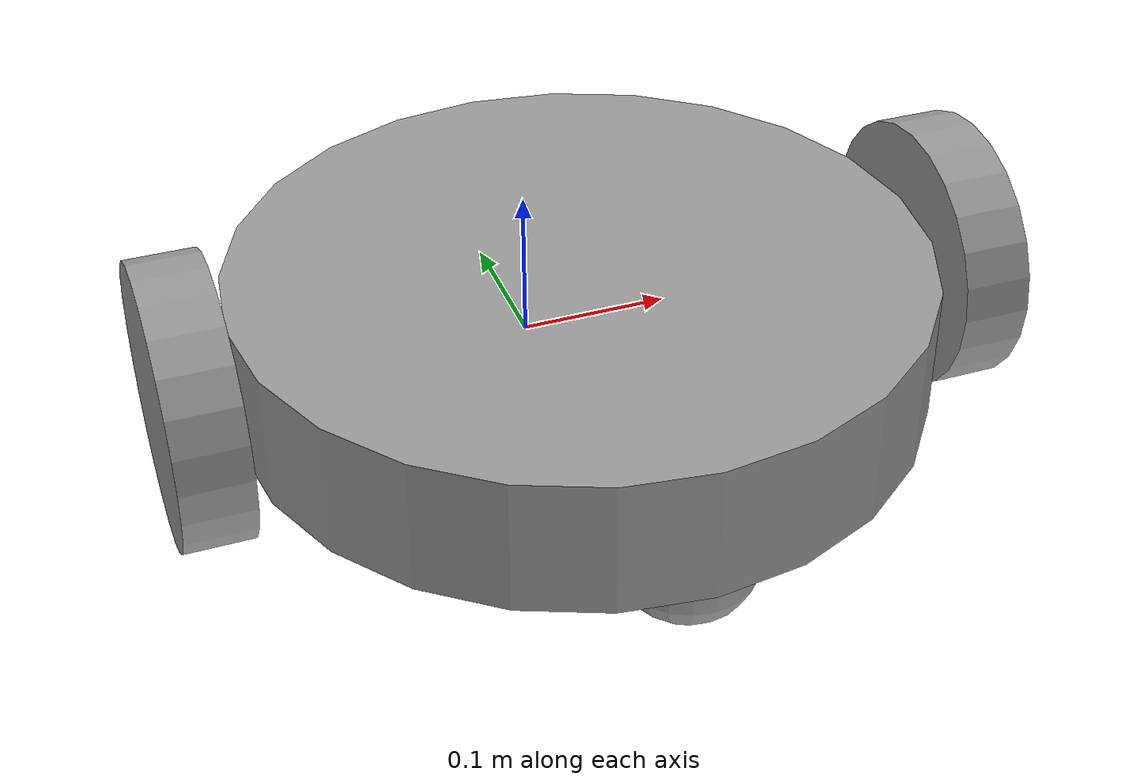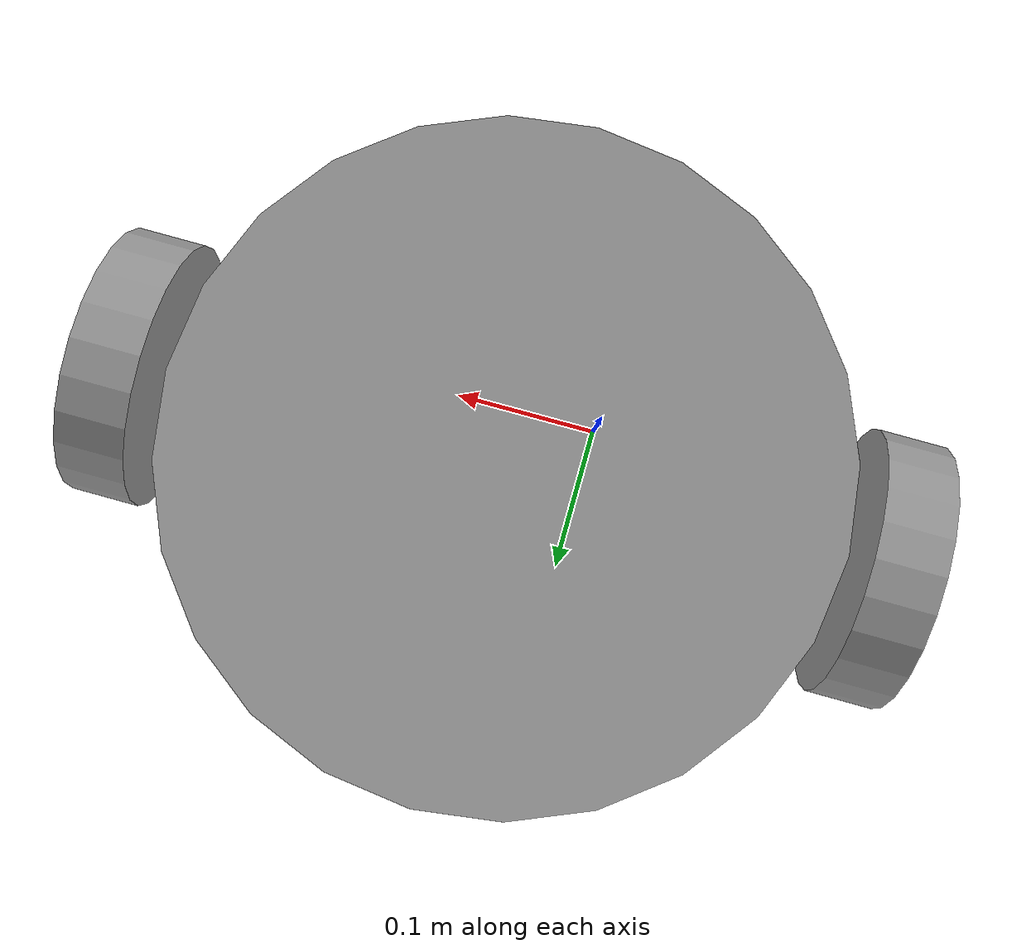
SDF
<?xml version='1.0'?>
<sdf version='1.6'>
  <model name='udacity_bot'>
    <link name='link_0'>
      <inertial>
        <mass>1</mass>
        <inertia>
          <ixx>0.145833</ixx>
          <ixy>0</ixy>
          <ixz>0</ixz>
          <iyy>0.145833</iyy>
          <iyz>0</iyz>
          <izz>0.125</izz>
        </inertia>
        <pose frame=''>0 0 0 0 -0 0</pose>
      </inertial>
      <pose frame=''>0.053998 0.039 -0.030999 0 -0 0</pose>
      <gravity>1</gravity>
      <self_collide>0</self_collide>
      <kinematic>0</kinematic>
      <enable_wind>0</enable_wind>
      <visual name='visual'>
        <pose frame=''>0 0 0 0 -0 0</pose>
        <geometry>
          <cylinder>
            <radius>0.25</radius>
            <length>0.1</length>
          </cylinder>
        </geometry>
        <material>
          <lighting>1</lighting>
          <script>
            <uri>file://media/materials/scripts/gazebo.material</uri>
            <name>Gazebo/Grey</name>
          </script>
          <shader type='vertex'>
            <normal_map>__default__</normal_map>
          </shader>
          <ambient>0.3 0.3 0.3 1</ambient>
          <diffuse>0.7 0.7 0.7 1</diffuse>
          <specular>0.01 0.01 0.01 1</specular>
          <emissive>0 0 0 1</emissive>
        </material>
        <transparency>0</transparency>
        <cast_shadows>1</cast_shadows>
      </visual>
      <collision name='collision'>
        <laser_retro>0</laser_retro>
        <max_contacts>10</max_contacts>
        <pose frame=''>0 0 0 0 -0 0</pose>
        <geometry>
          <cylinder>
            <radius>0.25</radius>
            <length>0.1</length>
          </cylinder>
        </geometry>
        <surface>
          <friction>
            <ode>
              <mu>1</mu>
              <mu2>1</mu2>
              <fdir1>0 0 0</fdir1>
              <slip1>0</slip1>
              <slip2>0</slip2>
            </ode>
            <torsional>
              <coefficient>1</coefficient>
              <patch_radius>0</patch_radius>
              <surface_radius>0</surface_radius>
              <use_patch_radius>1</use_patch_radius>
              <ode>
                <slip>0</slip>
              </ode>
            </torsional>
          </friction>
          <bounce>
            <restitution_coefficient>0</restitution_coefficient>
            <threshold>1e+06</threshold>
          </bounce>
          <contact>
            <collide_without_contact>0</collide_without_contact>
            <collide_without_contact_bitmask>1</collide_without_contact_bitmask>
            <collide_bitmask>1</collide_bitmask>
            <ode>
              <soft_cfm>0</soft_cfm>
              <soft_erp>0.2</soft_erp>
              <kp>1e+13</kp>
              <kd>1</kd>
              <max_vel>0.01</max_vel>
              <min_depth>0</min_depth>
            </ode>
            <bullet>
              <split_impulse>1</split_impulse>
              <split_impulse_penetration_threshold>-0.01</split_impulse_penetration_threshold>
              <soft_cfm>0</soft_cfm>
              <soft_erp>0.2</soft_erp>
              <kp>1e+13</kp>
              <kd>1</kd>
            </bullet>
          </contact>
        </surface>
      </collision>
    </link>
    <link name='link_3'>
      <inertial>
        <mass>1</mass>
        <inertia>
          <ixx>0.145833</ixx>
          <ixy>0</ixy>
          <ixz>0</ixz>
          <iyy>0.145833</iyy>
          <iyz>0</iyz>
          <izz>0.125</izz>
        </inertia>
        <pose frame=''>0 0 0 0 -0 0</pose>
      </inertial>
      <pose frame=''>-0.226002 0.039 -0.030999 0 1.5707 0</pose>
      <gravity>1</gravity>
      <self_collide>0</self_collide>
      <kinematic>0</kinematic>
      <enable_wind>0</enable_wind>
      <visual name='visual'>
        <pose frame=''>0 0 0 0 -0 0</pose>
        <geometry>
          <cylinder>
            <radius>0.1</radius>
            <length>0.05</length>
          </cylinder>
        </geometry>
        <material>
          <lighting>1</lighting>
          <script>
            <uri>file://media/materials/scripts/gazebo.material</uri>
            <name>Gazebo/Grey</name>
          </script>
          <shader type='vertex'>
            <normal_map>__default__</normal_map>
          </shader>
          <ambient>0.3 0.3 0.3 1</ambient>
          <diffuse>0.7 0.7 0.7 1</diffuse>
          <specular>0.01 0.01 0.01 1</specular>
          <emissive>0 0 0 1</emissive>
        </material>
        <transparency>0</transparency>
        <cast_shadows>1</cast_shadows>
      </visual>
      <collision name='collision'>
        <laser_retro>0</laser_retro>
        <max_contacts>10</max_contacts>
        <pose frame=''>0 0 0 0 -0 0</pose>
        <geometry>
          <cylinder>
            <radius>0.1</radius>
            <length>0.05</length>
          </cylinder>
        </geometry>
        <surface>
          <friction>
            <ode>
              <mu>1</mu>
              <mu2>1</mu2>
              <fdir1>0 0 0</fdir1>
              <slip1>0</slip1>
              <slip2>0</slip2>
            </ode>
            <torsional>
              <coefficient>1</coefficient>
              <patch_radius>0</patch_radius>
              <surface_radius>0</surface_radius>
              <use_patch_radius>1</use_patch_radius>
              <ode>
                <slip>0</slip>
              </ode>
            </torsional>
          </friction>
          <bounce>
            <restitution_coefficient>0</restitution_coefficient>
            <threshold>1e+06</threshold>
          </bounce>
          <contact>
            <collide_without_contact>0</collide_without_contact>
            <collide_without_contact_bitmask>1</collide_without_contact_bitmask>
            <collide_bitmask>1</collide_bitmask>
            <ode>
              <soft_cfm>0</soft_cfm>
              <soft_erp>0.2</soft_erp>
              <kp>1e+13</kp>
              <kd>1</kd>
              <max_vel>0.01</max_vel>
              <min_depth>0</min_depth>
            </ode>
            <bullet>
              <split_impulse>1</split_impulse>
              <split_impulse_penetration_threshold>-0.01</split_impulse_penetration_threshold>
              <soft_cfm>0</soft_cfm>
              <soft_erp>0.2</soft_erp>
              <kp>1e+13</kp>
              <kd>1</kd>
            </bullet>
          </contact>
        </surface>
      </collision>
    </link>
    <link name='link_3_clone'>
      <inertial>
        <mass>1</mass>
        <inertia>
          <ixx>0.145833</ixx>
          <ixy>0</ixy>
          <ixz>0</ixz>
          <iyy>0.145833</iyy>
          <iyz>0</iyz>
          <izz>0.125</izz>
        </inertia>
        <pose frame=''>0 0 0 0 -0 0</pose>
      </inertial>
      <pose frame=''>0.333998 0.039 -0.030999 0 1.5707 0</pose>
      <gravity>1</gravity>
      <self_collide>0</self_collide>
      <kinematic>0</kinematic>
      <enable_wind>0</enable_wind>
      <visual name='visual'>
        <pose frame=''>0 0 0 0 -0 0</pose>
        <geometry>
          <cylinder>
            <radius>0.1</radius>
            <length>0.05</length>
          </cylinder>
        </geometry>
        <material>
          <lighting>1</lighting>
          <script>
            <uri>file://media/materials/scripts/gazebo.material</uri>
            <name>Gazebo/Grey</name>
          </script>
          <shader type='vertex'>
            <normal_map>__default__</normal_map>
          </shader>
          <ambient>0.3 0.3 0.3 1</ambient>
          <diffuse>0.7 0.7 0.7 1</diffuse>
          <specular>0.01 0.01 0.01 1</specular>
          <emissive>0 0 0 1</emissive>
        </material>
        <transparency>0</transparency>
        <cast_shadows>1</cast_shadows>
      </visual>
      <collision name='collision'>
        <laser_retro>0</laser_retro>
        <max_contacts>10</max_contacts>
        <pose frame=''>0 0 0 0 -0 0</pose>
        <geometry>
          <cylinder>
            <radius>0.1</radius>
            <length>0.05</length>
          </cylinder>
        </geometry>
        <surface>
          <friction>
            <ode>
              <mu>1</mu>
              <mu2>1</mu2>
              <fdir1>0 0 0</fdir1>
              <slip1>0</slip1>
              <slip2>0</slip2>
            </ode>
            <torsional>
              <coefficient>1</coefficient>
              <patch_radius>0</patch_radius>
              <surface_radius>0</surface_radius>
              <use_patch_radius>1</use_patch_radius>
              <ode>
                <slip>0</slip>
              </ode>
            </torsional>
          </friction>
          <bounce>
            <restitution_coefficient>0</restitution_coefficient>
            <threshold>1e+06</threshold>
          </bounce>
          <contact>
            <collide_without_contact>0</collide_without_contact>
            <collide_without_contact_bitmask>1</collide_without_contact_bitmask>
            <collide_bitmask>1</collide_bitmask>
            <ode>
              <soft_cfm>0</soft_cfm>
              <soft_erp>0.2</soft_erp>
              <kp>1e+13</kp>
              <kd>1</kd>
              <max_vel>0.01</max_vel>
              <min_depth>0</min_depth>
            </ode>
            <bullet>
              <split_impulse>1</split_impulse>
              <split_impulse_penetration_threshold>-0.01</split_impulse_penetration_threshold>
              <soft_cfm>0</soft_cfm>
              <soft_erp>0.2</soft_erp>
              <kp>1e+13</kp>
              <kd>1</kd>
            </bullet>
          </contact>
        </surface>
      </collision>
    </link>
    <link name='link_4'>
      <inertial>
        <mass>0.00024324</mass>
        <inertia>
          <ixx>9e-08</ixx>
          <ixy>0</ixy>
          <ixz>0</ixz>
          <iyy>9e-08</iyy>
          <iyz>0</iyz>
          <izz>9e-08</izz>
        </inertia>
        <pose frame=''>0 0 0 0 -0 0</pose>
      </inertial>
      <pose frame=''>0.053998 0.239 -0.080999 -0.05 0 0</pose>
      <gravity>1</gravity>
      <self_collide>0</self_collide>
      <kinematic>0</kinematic>
      <enable_wind>0</enable_wind>
      <visual name='visual'>
        <pose frame=''>0 0 0 0 -0 0</pose>
        <geometry>
          <sphere>
            <radius>0.05</radius>
          </sphere>
        </geometry>
        <material>
          <lighting>1</lighting>
          <script>
            <uri>file://media/materials/scripts/gazebo.material</uri>
            <name>Gazebo/Grey</name>
          </script>
          <shader type='vertex'>
            <normal_map>__default__</normal_map>
          </shader>
          <ambient>0.3 0.3 0.3 1</ambient>
          <diffuse>0.7 0.7 0.7 1</diffuse>
          <specular>0.01 0.01 0.01 1</specular>
          <emissive>0 0 0 1</emissive>
        </material>
        <transparency>0</transparency>
        <cast_shadows>1</cast_shadows>
      </visual>
      <collision name='collision'>
        <laser_retro>0</laser_retro>
        <max_contacts>10</max_contacts>
        <pose frame=''>0 0 0 0 -0 0</pose>
        <geometry>
          <sphere>
            <radius>0.05</radius>
          </sphere>
        </geometry>
        <surface>
          <friction>
            <ode>
              <mu>1</mu>
              <mu2>1</mu2>
              <fdir1>0 0 0</fdir1>
              <slip1>0</slip1>
              <slip2>0</slip2>
            </ode>
            <torsional>
              <coefficient>1</coefficient>
              <patch_radius>0</patch_radius>
              <surface_radius>0</surface_radius>
              <use_patch_radius>1</use_patch_radius>
              <ode>
                <slip>0</slip>
              </ode>
            </torsional>
          </friction>
          <bounce>
            <restitution_coefficient>0</restitution_coefficient>
            <threshold>1e+06</threshold>
          </bounce>
          <contact>
            <collide_without_contact>0</collide_without_contact>
            <collide_without_contact_bitmask>1</collide_without_contact_bitmask>
            <collide_bitmask>1</collide_bitmask>
            <ode>
              <soft_cfm>0</soft_cfm>
              <soft_erp>0.2</soft_erp>
              <kp>1e+13</kp>
              <kd>1</kd>
              <max_vel>0.01</max_vel>
              <min_depth>0</min_depth>
            </ode>
            <bullet>
              <split_impulse>1</split_impulse>
              <split_impulse_penetration_threshold>-0.01</split_impulse_penetration_threshold>
              <soft_cfm>0</soft_cfm>
              <soft_erp>0.2</soft_erp>
              <kp>1e+13</kp>
              <kd>1</kd>
            </bullet>
          </contact>
        </surface>
      </collision>
    </link>
    <link name='link_4_clone'>
      <inertial>
        <mass>0.00024324</mass>
        <inertia>
          <ixx>9e-08</ixx>
          <ixy>0</ixy>
          <ixz>0</ixz>
          <iyy>9e-08</iyy>
          <iyz>0</iyz>
          <izz>9e-08</izz>
        </inertia>
        <pose frame=''>0 0 0 0 -0 0</pose>
      </inertial>
      <pose frame=''>0.053998 -0.161 -0.080999 0 -0 0</pose>
      <gravity>1</gravity>
      <self_collide>0</self_collide>
      <kinematic>0</kinematic>
      <enable_wind>0</enable_wind>
      <visual name='visual'>
        <pose frame=''>0 0 0 0 -0 0</pose>
        <geometry>
          <sphere>
            <radius>0.05</radius>
          </sphere>
        </geometry>
        <material>
          <lighting>1</lighting>
          <script>
            <uri>file://media/materials/scripts/gazebo.material</uri>
            <name>Gazebo/Grey</name>
          </script>
          <shader type='vertex'>
            <normal_map>__default__</normal_map>
          </shader>
          <ambient>0.3 0.3 0.3 1</ambient>
          <diffuse>0.7 0.7 0.7 1</diffuse>
          <specular>0.01 0.01 0.01 1</specular>
          <emissive>0 0 0 1</emissive>
        </material>
        <transparency>0</transparency>
        <cast_shadows>1</cast_shadows>
      </visual>
      <collision name='collision'>
        <laser_retro>0</laser_retro>
        <max_contacts>10</max_contacts>
        <pose frame=''>0 0 0 0 -0 0</pose>
        <geometry>
          <sphere>
            <radius>0.05</radius>
          </sphere>
        </geometry>
        <surface>
          <friction>
            <ode>
              <mu>1</mu>
              <mu2>1</mu2>
              <fdir1>0 0 0</fdir1>
              <slip1>0</slip1>
              <slip2>0</slip2>
            </ode>
            <torsional>
              <coefficient>1</coefficient>
              <patch_radius>0</patch_radius>
              <surface_radius>0</surface_radius>
              <use_patch_radius>1</use_patch_radius>
              <ode>
                <slip>0</slip>
              </ode>
            </torsional>
          </friction>
          <bounce>
            <restitution_coefficient>0</restitution_coefficient>
            <threshold>1e+06</threshold>
          </bounce>
          <contact>
            <collide_without_contact>0</collide_without_contact>
            <collide_without_contact_bitmask>1</collide_without_contact_bitmask>
            <collide_bitmask>1</collide_bitmask>
            <ode>
              <soft_cfm>0</soft_cfm>
              <soft_erp>0.2</soft_erp>
              <kp>1e+13</kp>
              <kd>1</kd>
              <max_vel>0.01</max_vel>
              <min_depth>0</min_depth>
            </ode>
            <bullet>
              <split_impulse>1</split_impulse>
              <split_impulse_penetration_threshold>-0.01</split_impulse_penetration_threshold>
              <soft_cfm>0</soft_cfm>
              <soft_erp>0.2</soft_erp>
              <kp>1e+13</kp>
              <kd>1</kd>
            </bullet>
          </contact>
        </surface>
      </collision>
    </link>
    <joint name='link_0_JOINT_1' type='revolute'>
      <parent>link_0</parent>
      <child>link_3</child>
      <pose frame=''>0 0 0 0 -0 0</pose>
      <axis>
        <xyz>1 0 0</xyz>
        <use_parent_model_frame>0</use_parent_model_frame>
        <limit>
          <lower>-1.79769e+308</lower>
          <upper>1.79769e+308</upper>
          <effort>-1</effort>
          <velocity>-1</velocity>
        </limit>
        <dynamics>
          <spring_reference>0</spring_reference>
          <spring_stiffness>0</spring_stiffness>
          <damping>0</damping>
        </dynamics>
      </axis>
      <physics>
        <ode>
          <limit>
            <cfm>0</cfm>
            <erp>0.2</erp>
          </limit>
          <suspension>
            <cfm>0</cfm>
            <erp>0.2</erp>
          </suspension>
        </ode>
      </physics>
    </joint>
    <joint name='link_0_JOINT_2' type='revolute'>
      <parent>link_0</parent>
      <child>link_3_clone</child>
      <pose frame=''>0 0 0 0 -0 0</pose>
      <axis>
        <xyz>1 0 0</xyz>
        <use_parent_model_frame>0</use_parent_model_frame>
        <limit>
          <lower>-1.79769e+308</lower>
          <upper>1.79769e+308</upper>
          <effort>-1</effort>
          <velocity>-1</velocity>
        </limit>
        <dynamics>
          <spring_reference>0</spring_reference>
          <spring_stiffness>0</spring_stiffness>
          <damping>0</damping>
        </dynamics>
      </axis>
      <physics>
        <ode>
          <limit>
            <cfm>0</cfm>
            <erp>0.2</erp>
          </limit>
          <suspension>
            <cfm>0</cfm>
            <erp>0.2</erp>
          </suspension>
        </ode>
      </physics>
    </joint>
    <joint name='link_0_JOINT_3' type='fixed'>
      <parent>link_0</parent>
      <child>link_4</child>
      <pose frame=''>0 0 0 0 -0 0</pose>
      <physics>
        <ode>
          <limit>
            <cfm>0</cfm>
            <erp>0.2</erp>
          </limit>
          <suspension>
            <cfm>0</cfm>
            <erp>0.2</erp>
          </suspension>
        </ode>
      </physics>
    </joint>
    <joint name='link_0_JOINT_4' type='revolute'>
      <parent>link_0</parent>
      <child>link_4_clone</child>
      <pose frame=''>0 0 0 0 -0 0</pose>
      <axis>
        <xyz>1 0 0</xyz>
        <use_parent_model_frame>0</use_parent_model_frame>
        <limit>
          <lower>-1.79769e+308</lower>
          <upper>1.79769e+308</upper>
          <effort>-1</effort>
          <velocity>-1</velocity>
        </limit>
        <dynamics>
          <spring_reference>0</spring_reference>
          <spring_stiffness>0</spring_stiffness>
          <damping>0</damping>
        </dynamics>
      </axis>
      <physics>
        <ode>
          <limit>
            <cfm>0</cfm>
            <erp>0.2</erp>
          </limit>
          <suspension>
            <cfm>0</cfm>
            <erp>0.2</erp>
          </suspension>
        </ode>
      </physics>
    </joint>
    <static>0</static>
    <allow_auto_disable>1</allow_auto_disable>
  </model>
</sdf>
